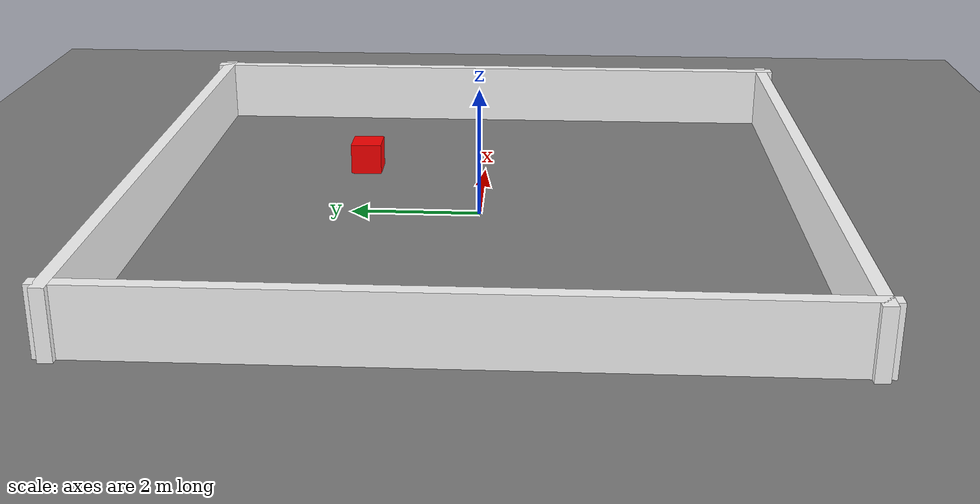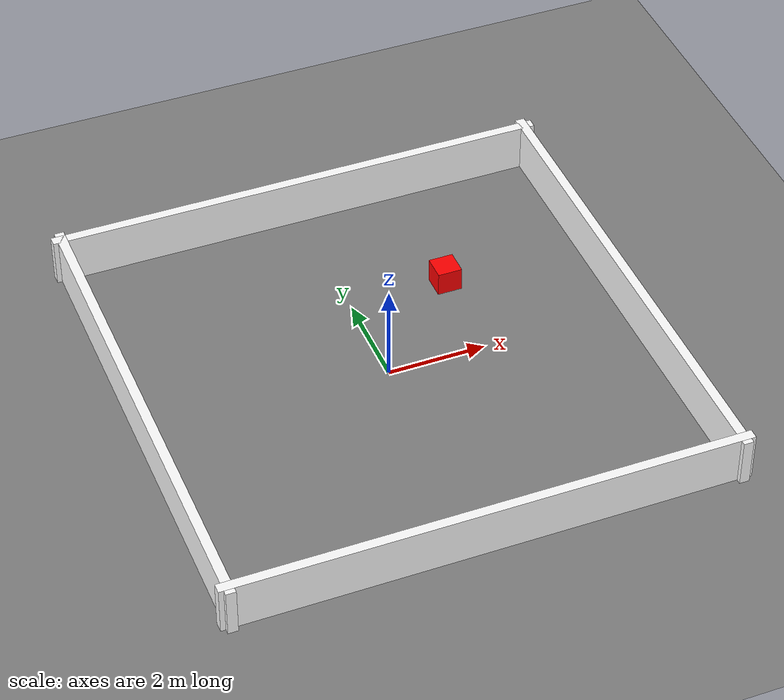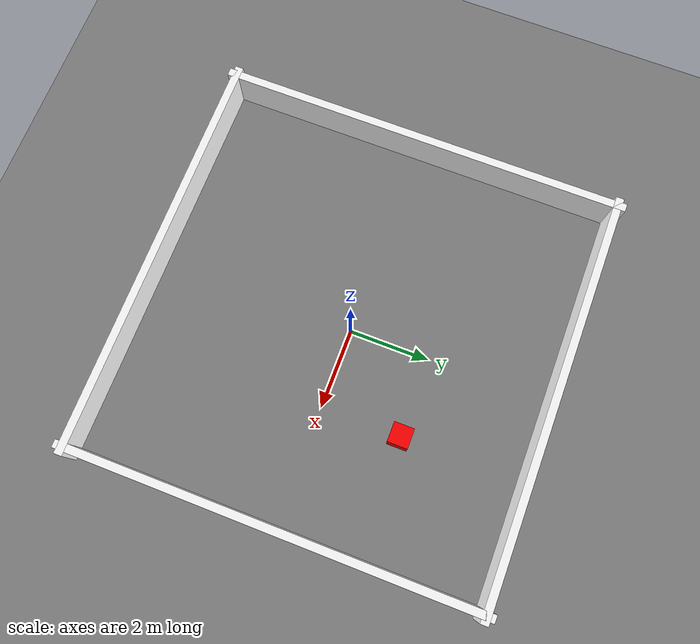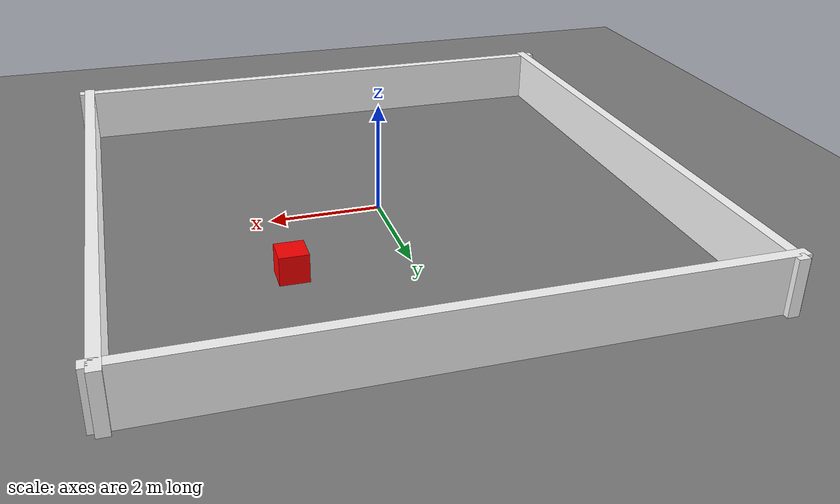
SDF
<?xml version="1.0" ?>
<sdf version="1.8">
  <world name="swarm_world">

    <!-- Required system plugins -->
    <plugin filename="gz-sim-physics-system"        name="gz::sim::systems::Physics"/>
    <plugin filename="gz-sim-sensors-system"        name="gz::sim::systems::Sensors">
      <render_engine>ogre2</render_engine>
    </plugin>
    <plugin filename="gz-sim-scene-broadcaster-system" name="gz::sim::systems::SceneBroadcaster"/>
    <plugin filename="gz-sim-user-commands-system"  name="gz::sim::systems::UserCommands"/>

    <!-- Scene: black background, moderate ambient so unlit faces aren't pure black -->
    <scene>
      <ambient>0.4 0.4 0.4 1</ambient>
      <background>0 0 0 1</background>
    </scene>

    <!-- Lighting -->
    <light type="directional" name="sun">
      <cast_shadows>true</cast_shadows>
      <pose>0 0 10 0 0 0</pose>
      <diffuse>0.8 0.8 0.8 1</diffuse>
      <specular>0.2 0.2 0.2 1</specular>
      <direction>-0.5 0.1 -0.9</direction>
    </light>

    <!-- Ground: medium gray -->
    <model name="ground_plane">
      <static>true</static>
      <link name="link">
        <collision name="collision">
          <geometry><plane><normal>0 0 1</normal></plane></geometry>
        </collision>
        <visual name="visual">
          <geometry><plane><normal>0 0 1</normal><size>100 100</size></plane></geometry>
          <material>
            <ambient>0.5 0.5 0.5 1</ambient>
            <diffuse>0.5 0.5 0.5 1</diffuse>
          </material>
        </visual>
      </link>
    </model>

    <!--
      10x10m enclosed room.
      Walls are centered on each axis at ±5m.
      East/West walls are 10.4m long to cover the full span including wall thickness,
      so no gaps exist at corners.
    -->

    <!-- North wall: x=+5, spans full Y width -->
    <model name="wall_north">
      <static>true</static>
      <pose>5 0 0.5 0 0 0</pose>
      <link name="link">
        <collision name="collision">
          <geometry><box><size>0.2 10.4 1</size></box></geometry>
        </collision>
        <visual name="visual">
          <geometry><box><size>0.2 10.4 1</size></box></geometry>
          <material>
            <ambient>1 1 1 1</ambient>
            <diffuse>1 1 1 1</diffuse>
          </material>
        </visual>
      </link>
    </model>

    <!-- South wall: x=-5 -->
    <model name="wall_south">
      <static>true</static>
      <pose>-5 0 0.5 0 0 0</pose>
      <link name="link">
        <collision name="collision">
          <geometry><box><size>0.2 10.4 1</size></box></geometry>
        </collision>
        <visual name="visual">
          <geometry><box><size>0.2 10.4 1</size></box></geometry>
          <material>
            <ambient>1 1 1 1</ambient>
            <diffuse>1 1 1 1</diffuse>
          </material>
        </visual>
      </link>
    </model>

    <!-- East wall: y=+5, spans full X width -->
    <model name="wall_east">
      <static>true</static>
      <pose>0 5 0.5 0 0 0</pose>
      <link name="link">
        <collision name="collision">
          <geometry><box><size>10.4 0.2 1</size></box></geometry>
        </collision>
        <visual name="visual">
          <geometry><box><size>10.4 0.2 1</size></box></geometry>
          <material>
            <ambient>1 1 1 1</ambient>
            <diffuse>1 1 1 1</diffuse>
          </material>
        </visual>
      </link>
    </model>

    <!-- West wall: y=-5 -->
    <model name="wall_west">
      <static>true</static>
      <pose>0 -5 0.5 0 0 0</pose>
      <link name="link">
        <collision name="collision">
          <geometry><box><size>10.4 0.2 1</size></box></geometry>
        </collision>
        <visual name="visual">
          <geometry><box><size>10.4 0.2 1</size></box></geometry>
          <material>
            <ambient>1 1 1 1</ambient>
            <diffuse>1 1 1 1</diffuse>
          </material>
        </visual>
      </link>
    </model>

    <!-- Interior obstacle for SLAM interest -->
    <model name="box_obstacle">
      <static>true</static>
      <pose>2 2 0.25 0 0 0</pose>
      <link name="link">
        <collision name="collision">
          <geometry><box><size>0.5 0.5 0.5</size></box></geometry>
        </collision>
        <visual name="visual">
          <geometry><box><size>0.5 0.5 0.5</size></box></geometry>
          <material>
            <ambient>1 0 0 1</ambient>
            <diffuse>1 0 0 1</diffuse>
          </material>
        </visual>
      </link>
    </model>

  </world>
</sdf>
